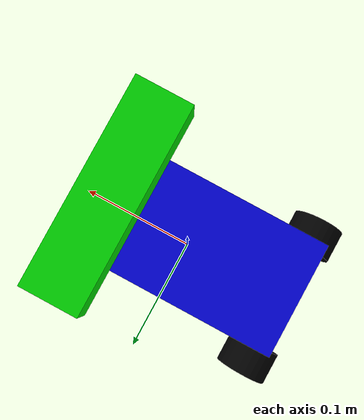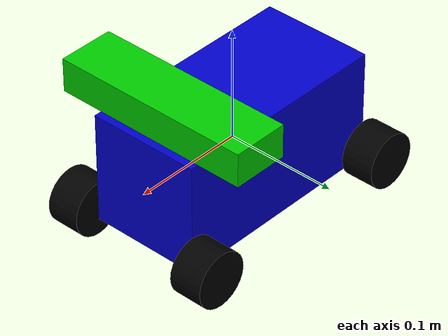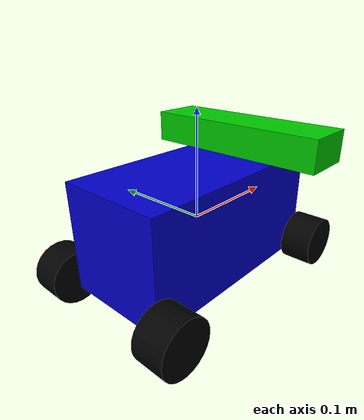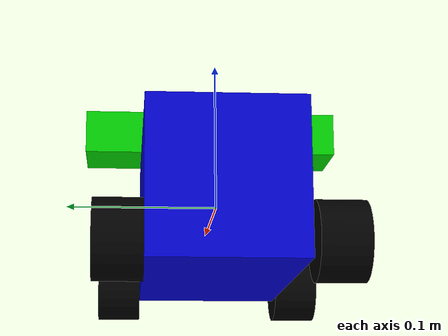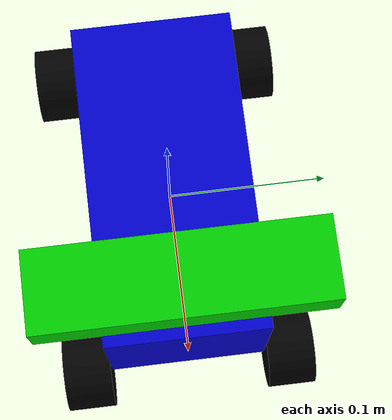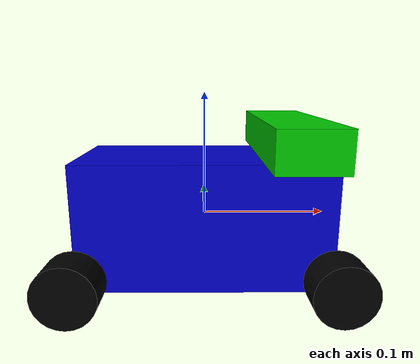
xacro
<?xml version="1.0"?>
<robot name="mbot" xmlns:xacro="http://www.ros.org/wiki/xacro">

	<link name ="base_link">
		<visual>
			<geometry>
				<box size = "0.2 0.1 0.1"/>
			</geometry>
			<material name ="blue">
				<color rgba="0.0 0.0 0.8 1.0"/>
			</material>
		</visual>
		<collision>
			<geometry>
				<box size = "0.2 0.1 0.1"/>
			</geometry>
		</collision>
		<inertial>
			<mass value="1.6"/>
			<inertia ixx="0.00667" ixy="0.0" ixz="0.0" iyy="0.00667" iyz="0.0" izz="0.00267"/>
		</inertial>
	</link>
	<gazebo reference="base_link">
		<material>Gazebo/Blue</material>
	</gazebo>

	<xacro:macro name="wheel_tran" params="prefix suffix">
		<transmission name="tran_${prefix}_${suffix}">
    		<type>transmission_interface/SimpleTransmission</type>
    		<joint name="base_to_wheel_${prefix}_${suffix}">
      			<hardwareInterface>hardware_interface/VelocityJointInterface</hardwareInterface>
    		</joint>
			<actuator name="motor_${prefix}_${suffix}">
      			<mechanicalReduction>1</mechanicalReduction>
    		</actuator>
  		</transmission>
	</xacro:macro>

	<xacro:macro name="wheel_link" params="prefix suffix xreflect yreflect">
		<link name="wheel_${prefix}_${suffix}">
			<visual>
				<geometry>
					<cylinder length="0.03" radius="0.0245"/>
				</geometry>
				<origin rpy="1.57075 0 0" xyz="0 0 0"/>
				<material name="black">
					<color rgba="0.0 0.0 0.0 1.0"/>
				</material>
			</visual>
			<collision>
				<geometry>
					<cylinder length="0.03" radius="0.0245"/>
				</geometry>
				<origin rpy="1.57075 0 0" xyz="0 0 0"/>
			</collision>
			<inertial>
				<mass value="0.01"/>
				<inertia ixx="0.00000225" ixy="0.0" ixz="0.0" iyy="0.000003" iyz="0.0" izz="0.00000225"/>
			</inertial>
		</link>
		<joint name="base_to_wheel_${prefix}_${suffix}" type="continuous">
			<axis rpy="0 0 0" xyz="0 1 0"/>
			<parent link="base_link"/>
			<child link="wheel_${prefix}_${suffix}"/>
			<origin rpy="0 0 0" xyz="${xreflect*0.1} ${yreflect*0.065} -0.04"/>
		</joint>
		<gazebo reference="wheel_${prefix}_${suffix}">
			<mu1 value="200.0"/>
        	<mu2 value="100.0"/>
        	<kp value="10000000.0" />
        	<kd value="1.0" />
        	<material>Gazebo/Black</material>
		</gazebo>
		<xacro:wheel_tran prefix="${prefix}" suffix="${suffix}"/>

	</xacro:macro>

	<xacro:wheel_link prefix="front" suffix="left" xreflect="1.0" yreflect="1.0"/>
	<xacro:wheel_link prefix="front" suffix="right" xreflect="1.0" yreflect="-1.0"/>
	<xacro:wheel_link prefix="rear" suffix="left" xreflect="-1.0" yreflect="1.0"/>
	<xacro:wheel_link prefix="rear" suffix="right" xreflect="-1.0" yreflect="-1.0"/>

    <link name="imu_link">
        <visual>
            <geometry>
                <box size="0.001 0.001 0.0001"/>
            </geometry>
            <material name="grey">
				<color rgba="0.2 0.2 0.2 1.0"/>
			</material>
        </visual>
		<collision>
			<geometry>
                <box size="0.001 0.001 0.0001"/>
            </geometry>
		</collision>
		<inertial>
			<mass value="0.01"/>
			<inertia ixx="0.000001" ixy="0.0" ixz="0.0" iyy="0.000001" iyz="0.0" izz="0.0000001"/>
		</inertial>
    </link>
    <joint name="base_to_imu" type="fixed">
		<axis rpy="0 0 0" xyz="0 0 1"/>
        <parent link="base_link"/>
        <child link="imu_link"/>
        <origin rpy="0 0 0" xyz="0 0 0.05"/>
    </joint>
	<gazebo reference="imu_link">
		<gravity>true</gravity>
		<material>Gazebo/Grey</material>
		<sensor name="imu_sensor" type="imu">
			<always_on>true</always_on>
			<update_rate>100</update_rate>
			<visualize>true</visualize>
			<topic>imu</topic>
			<plugin filename="libgazebo_ros_imu_sensor.so" name="imu_plugin">
				<topicName>imu</topicName>
				<bodyName>imu</bodyName>
				<updateRateHZ>10.0</updateRateHZ>
				<gaussianNoise>0.0</gaussianNoise>
				<xyzOffset>0 0 0</xyzOffset>
				<rpyOffset>0 0 0</rpyOffset>
				<frameName>imu</frameName>
			</plugin>
			<pose>0 0 0 0 0 0</pose>
		</sensor>
	</gazebo>

    <link name="xtion_link">
        <visual>
            <geometry>
                <box size="0.05 0.18 0.03"/>
            </geometry>
			<material name="green">
				<color rgba="0.0 0.8 0.0 1.0"/>
			</material>
        </visual>
		<collision>
			<geometry>
                <box size="0.05 0.18 0.03"/>
            </geometry>
		</collision>
		<inertial>
			<mass value="0.1"/>
			<inertia ixx="0.0000283" ixy="0.0" ixz="0.0" iyy="0.0002775" iyz="0.0" izz="0.00029"/>
		</inertial>
    </link>
    <joint name="base_to_xtion" type="fixed">
		<axis rpy="0 0 0" xyz="0 0 1"/>
        <parent link="base_link"/>
        <child link="xtion_link"/>
        <origin rpy="0 0 0" xyz="0.068 0 0.065"/>
    </joint>
	<gazebo reference="xtion_link">
		<material>Gazebo/Green</material>
		<sensor type="depth" name="xtion">
			<pose>0 0 0 0 0 0</pose>
			<always_on>true</always_on>
			<visualize>true</visualize>
			<camera>
				<horizontal_fov>1.02974</horizontal_fov>
				<image>
					<width>640</width>
					<height>480</height>
					<format>R8G8B8</format>
				</image>
				<depth_camera></depth_camera>
				<clip>
					<near>0.02</near>
					<far>300</far>
				</clip>
			</camera>
			<plugin name="$xtion_link_controller" filename="libgazebo_ros_openni_kinect.so">
				<baseline>0.2</baseline>
				<alwaysOn>true</alwaysOn>
				<updateRate>30.0</updateRate>
				<cameraName>camera</cameraName>
				<imageTopicName>/camera/rgb/image_raw</imageTopicName>
				<cameraInfoTopicName>/camera/rgb/camera_info</cameraInfoTopicName>
				<depthImageTopicName>/camera/depth/image_raw</depthImageTopicName>
				<depthImageInfoTopicName>/camera/depth/camera_info</depthImageInfoTopicName>
				<pointCloudTopicName>/camera/depth/points</pointCloudTopicName>
				<frameName>xtion_link</frameName>
				<pointCloudCutoff>0.5</pointCloudCutoff>
				<distortionK1>0.00000001</distortionK1>
				<distortionK2>0.00000001</distortionK2>
				<distortionK3>0.00000001</distortionK3>
				<distortionT1>0.00000001</distortionT1>
				<distortionT2>0.00000001</distortionT2>
				<CxPrime>0</CxPrime>
				<Cx>0</Cx>
				<Cy>0</Cy>
				<focalLength>0</focalLength>
				<hackBaseline>0</hackBaseline>
			</plugin>
		</sensor>
	</gazebo>

	<gazebo>
        <plugin name="gazebo_ros_control" filename="libgazebo_ros_control.so">
            <robotNamespace>/</robotNamespace>
            <robotSimType>gazebo_ros_control/DefaultRobotHWSim</robotSimType>
        </plugin>
    </gazebo>

</robot>
